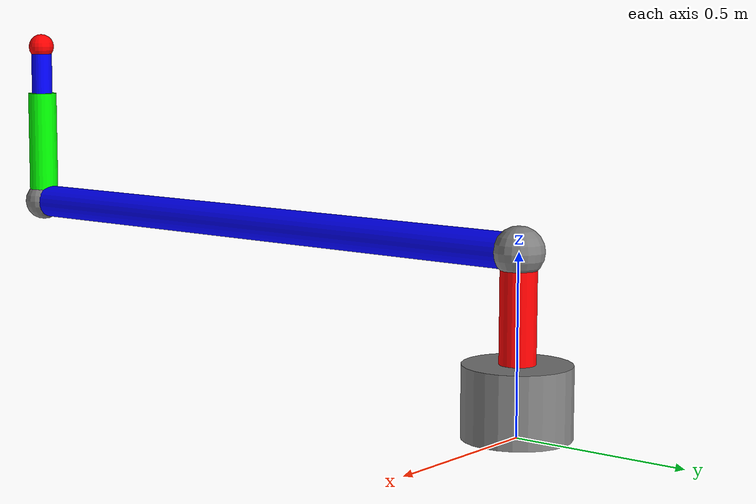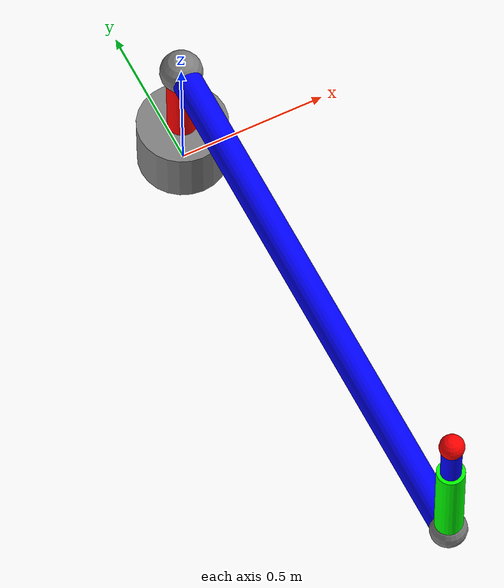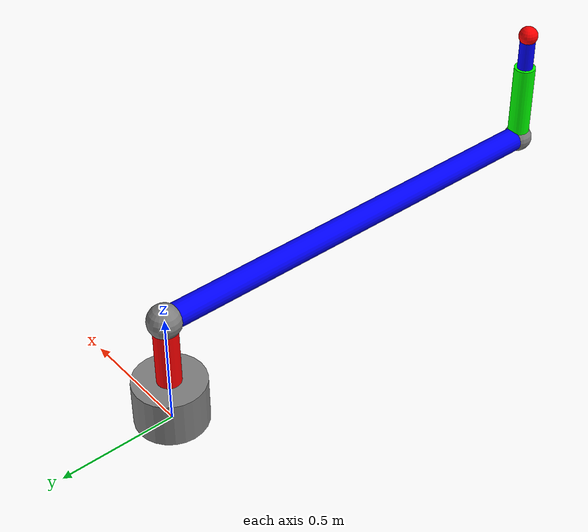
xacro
<?xml version="1.0"?>
<robot name="robot_rci" xmlns:xacro="http://www.ros.org/wiki/xacro">

  <!-- Paramètres géométriques du robot -->
  <xacro:property name="a" value="1.85"/>
  <xacro:property name="b" value="0.35"/>
  <xacro:property name="base_height" value="0.2"/>
  <xacro:property name="base_radius" value="0.15"/>
  <xacro:property name="link_radius" value="0.05"/>

  <!-- Base du robot - GRIS -->
  <link name="world"/>

  <link name="base_link">
    <visual>
      <origin xyz="0 0 ${base_height/2}" rpy="0 0 0"/>
      <geometry>
        <cylinder radius="${base_radius}" length="${base_height}"/>
      </geometry>
      <material name="grey">
        <color rgba="0.5 0.5 0.5 1"/>
      </material>
    </visual>
  </link>

  <joint name="world_to_base" type="fixed">
    <parent link="world"/>
    <child link="base_link"/>
    <origin xyz="0 0 0" rpy="0 0 0"/>
  </joint>

  <!-- Joint 1 : Rotation autour de Z -->
  <joint name="joint1" type="revolute">
    <parent link="base_link"/>
    <child link="link1_vertical"/>
    <origin xyz="0 0 ${base_height}" rpy="0 0 0"/>
    <axis xyz="0 0 1"/>
    <limit lower="${-110*pi/180}" upper="${110*pi/180}" effort="50.0" velocity="2.0"/>
  </joint>

  <!-- Barre verticale - ROUGE -->
  <link name="link1_vertical">
    <visual>
      <origin xyz="0 0 0.15" rpy="0 0 0"/>
      <geometry>
        <cylinder radius="${link_radius}" length="0.3"/>
      </geometry>
      <material name="red">
        <color rgba="1.0 0.0 0.0 1"/>
      </material>
    </visual>
  </link>

  <!-- Joint fixe pour connecter à la sphère joint1 -->
  <joint name="vertical_to_sphere" type="fixed">
    <parent link="link1_vertical"/>
    <child link="sphere_joint1"/>
    <origin xyz="0 0 0.3" rpy="0 0 0"/>
  </joint>

  <!-- Sphère joint 1 - GRIS -->
  <link name="sphere_joint1">
    <visual>
      <origin xyz="0 0 0" rpy="0 0 0"/>
      <geometry>
        <sphere radius="0.07"/>
      </geometry>
      <material name="grey_joint">
        <color rgba="0.5 0.5 0.5 1"/>
      </material>
    </visual>
  </link>

  <!-- Joint fixe pour connecter à la barre horizontale -->
  <joint name="sphere_to_horizontal" type="fixed">
    <parent link="sphere_joint1"/>
    <child link="link1_horizontal"/>
    <origin xyz="0 0 0" rpy="0 0 0"/>
  </joint>

  <!-- Barre horizontale (entre base et joint2) - BLEU -->
  <link name="link1_horizontal">
    <visual>
      <origin xyz="0 ${-a/2} 0" rpy="1.5708 0 0"/>
      <geometry>
        <cylinder radius="${link_radius}" length="${a}"/>
      </geometry>
      <material name="blue">
        <color rgba="0.0 0.0 1.0 1"/>
      </material>
    </visual>
  </link>

  <!-- Joint 2 : Rotation autour de X -->
  <joint name="joint2" type="revolute">
    <parent link="link1_horizontal"/>
    <child link="link2_pivot"/>
    <origin xyz="0 ${-a} 0" rpy="0 0 0"/>
    <axis xyz="1 0 0"/>
    <limit lower="0" upper="${80*pi/180}" effort="50.0" velocity="2.0"/>
  </joint>

  <!-- Sphère joint 2 - GRIS -->
  <link name="link2_pivot">
    <visual>
      <origin xyz="0 0 0" rpy="0 0 0"/>
      <geometry>
        <sphere radius="0.06"/>
      </geometry>
      <material name="grey_joint2">
        <color rgba="0.5 0.5 0.5 1"/>
      </material>
    </visual>
  </link>

  <!-- Joint 3 : Rotation autour de Z -->
  <joint name="joint3" type="revolute">
    <parent link="link2_pivot"/>
    <child link="link3_outer"/>
    <origin xyz="0 0 0" rpy="0 0 0"/>
    <axis xyz="0 0 1"/>
    <limit lower="0" upper="${2*pi}" effort="20.0" velocity="3.0"/>
  </joint>

  <!-- Barre qui tourne avec joint2 (tube extérieur) - VERT -->
  <link name="link3_outer">
    <visual>
      <origin xyz="0 0 ${b/2}" rpy="0 0 0"/>
      <geometry>
        <cylinder radius="${link_radius*0.9}" length="${b}"/>
      </geometry>
      <material name="green">
        <color rgba="0.0 1.0 0.0 1"/>
      </material>
    </visual>
  </link>

  <!-- Joint fixe pour le point d'ancrage du télescope -->
  <joint name="outer_to_anchor" type="fixed">
    <parent link="link3_outer"/>
    <child link="link3_anchor"/>
    <origin xyz="0 0 ${b}" rpy="0 0 0"/>
  </joint>

  <!-- Point d'ancrage invisible pour le télescope -->
  <link name="link3_anchor"/>

  <!-- Joint 4 : Translation le long de Z (télescope) -->
  <joint name="joint4" type="prismatic">
    <parent link="link3_anchor"/>
    <child link="link4_inner_green"/>
    <origin xyz="0 0 0" rpy="0 0 0"/>
    <axis xyz="0 0 1"/>
    <limit lower="0" upper="0.15" effort="30.0" velocity="0.5"/>
  </joint>

  <!-- Partie interne VERTE (reste dans le tube) -->
  <link name="link4_inner_green">
    <visual>
      <origin xyz="0 0 -0.075" rpy="0 0 0"/>
      <geometry>
        <cylinder radius="${link_radius*0.65}" length="0.15"/>
      </geometry>
      <material name="green_inner">
        <color rgba="0.0 0.0 1.0 1"/>
      </material>
    </visual>
  </link>

  <!-- Joint fixe vers la partie bleue -->
  <joint name="green_to_blue" type="fixed">
    <parent link="link4_inner_green"/>
    <child link="link4_outer_blue"/>
    <origin xyz="0 0 0" rpy="0 0 0"/>
  </joint>

  <!-- Partie externe BLEUE (sort du tube) -->
  <link name="link4_outer_blue">
    <visual>
      <origin xyz="0 0 0.075" rpy="0 0 0"/>
      <geometry>
        <cylinder radius="${link_radius*0.65}" length="0.15"/>
      </geometry>
      <material name="blue_telescopic">
        <color rgba="0.0 0.0 1.0 1"/>
      </material>
    </visual>
  </link>

  <!-- Joint fixe vers l'effecteur -->
  <joint name="blue_to_ee" type="fixed">
    <parent link="link4_outer_blue"/>
    <child link="end_effector"/>
    <origin xyz="0 0 0.15" rpy="0 0 0"/>
  </joint>

  <!-- Effecteur (centre d'objet) - ROUGE -->
  <link name="end_effector">
    <visual>
      <origin xyz="0 0 0" rpy="0 0 0"/>
      <geometry>
        <sphere radius="0.04"/>
      </geometry>
      <material name="red_end">
        <color rgba="1.0 0.0 0.0 1"/>
      </material>
    </visual>
  </link>

</robot>
